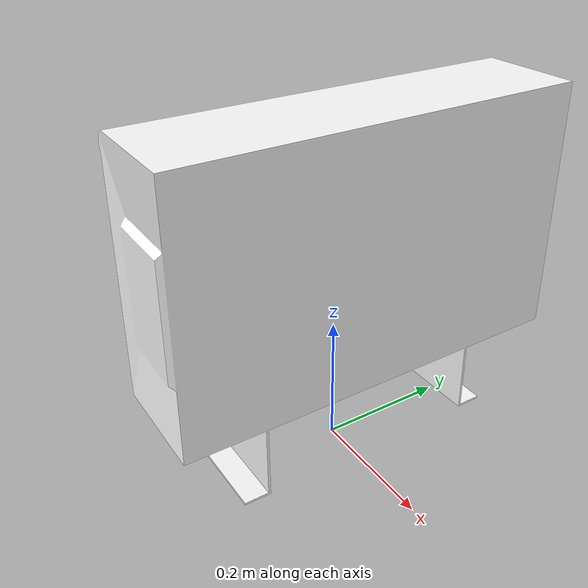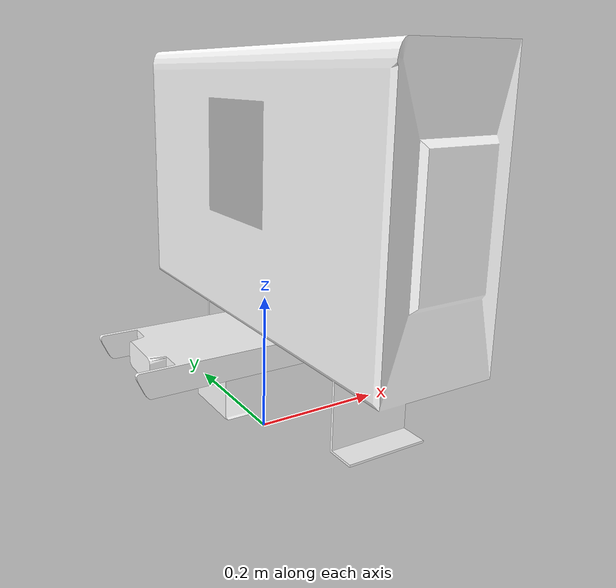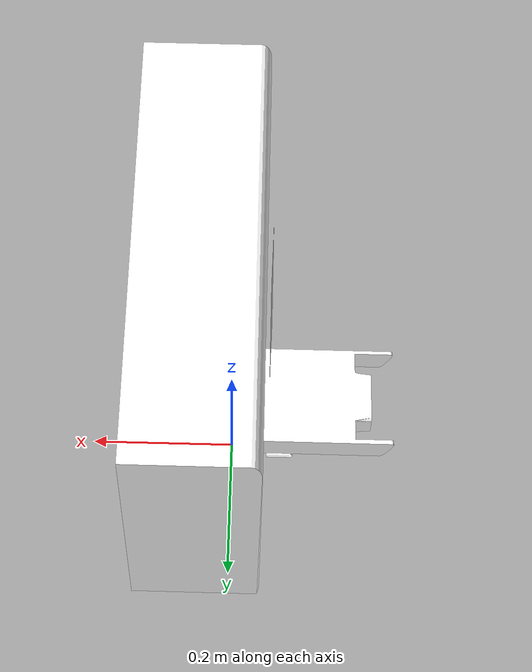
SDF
<?xml version='1.0'?>
<sdf version="1.6">
    <model name="charging_station">
        <pose>0 0 0 0 0 0</pose>
        <!-- BASE_LINK FRAME -->
        <link name="charging_station_base_link">
            <pose>0 0 0.05 0 0 -1.570796327</pose>
            <collision name="charging_station_collision">
                <pose>0 0 0.3 0 0 -1.570796327</pose>
                <geometry>
                    <box>
                        <size>0.1 0.55 0.4</size>
                    </box>
                </geometry>
            </collision>
            <visual name="charging_station_visual">
                <pose>0 0 0 0 0 0</pose>
                <geometry>
                    <mesh>
                        <scale>1 1 1</scale>
                        <uri>meshes/charging_station.dae</uri>
                    </mesh>
                </geometry>
            </visual>
        </link>
        <static>1</static>
    </model>
</sdf>
